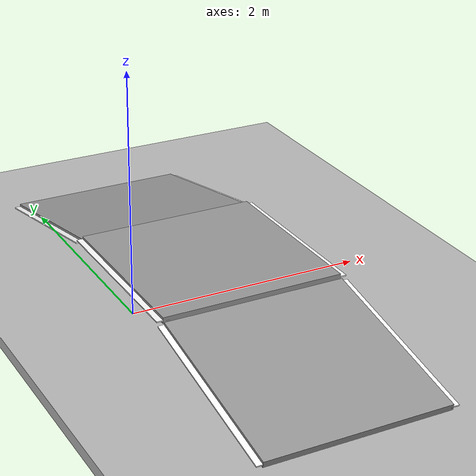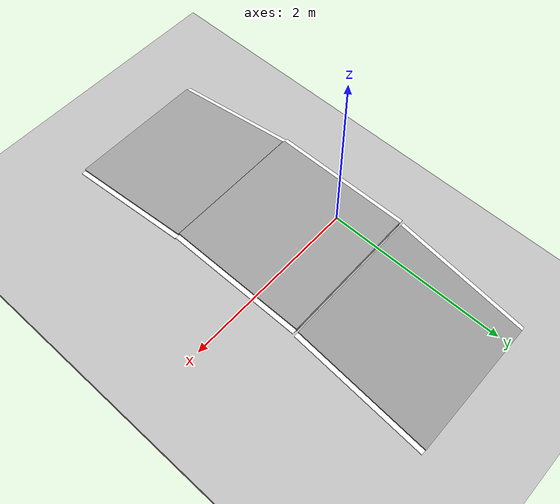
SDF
<?xml version="1.0" ?>
<sdf version="1.6">
  <world name="ramp">

    <physics type="ode">
      <max_step_size>0.001</max_step_size>
      <real_time_update_rate>1000</real_time_update_rate>
    </physics>

    <light type="directional" name="sun">
      <cast_shadows>true</cast_shadows>
      <pose>0 0 10 0 0 0</pose>
      <diffuse>1 1 1 1</diffuse>
      <specular>0.2 0.2 0.2 1</specular>
      <direction>-0.5 0.1 -0.9</direction>
    </light>

    <include>
      <uri>model://floor</uri>
      <pose>0 0 0 0 0 0</pose>
    </include>

    <gui fullscreen='0'>
      <camera name='user_camera'>
        <pose>-1.8 14.4 8.6 0.0 0.545 -1.65</pose>
        <view_controller>orbit</view_controller>
      </camera>
    </gui>

    <!--######################ramps##############################-->
    <include>
      <uri>model://ramp</uri>
      <name>ramp_1</name>
      <pose>0.61 -0.1 0.1 0 0 1.575</pose>
    </include>

  </world>
</sdf>

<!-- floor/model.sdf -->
<sdf version="1.6">
  <model name="custom_course">
    <static>true</static>
    <link name="link">
      <collision name="collision">
        <geometry>
          <box>
            <size>20 20 0.1</size> <!-- 20m x 20m wide, 10cm thick -->
          </box>
        </geometry>
      </collision>
      <visual name="visual">
        <geometry>
          <box>
            <size>20 20 0.1</size>
          </box>
        </geometry>
        <material>
          <script>
            <uri>model://floor/materials/scripts</uri>
            <uri>model://floor/materials/textures</uri>
            <name>CustomCourse/Diffuse</name>
          </script>
        </material>
      </visual>
    </link>
  </model>
</sdf>

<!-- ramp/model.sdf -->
<sdf version="1.8">
  <model name="ramp">
    <static>true</static>

    <!-- Up slope -->
    <link name="up_slope">
      <pose>-1.5 0 0.125 0 -0.1963 0</pose>
      <collision name="collision">
        <geometry><box><size>1.5 1.5 0.05</size></box></geometry>
        <surface>
          <friction><ode><mu>1.0</mu><mu2>1.0</mu2></ode></friction>
        </surface>
      </collision>
      <visual name="visual">
        <geometry><box><size>1.5 1.5 0.05</size></box></geometry>
        <material>
          <ambient>0.5 0.5 0.5 1</ambient>
          <diffuse>0.6 0.6 0.6 1</diffuse>
        </material>
      </visual>
    </link>

    <!-- Up slope lane lines -->
    <link name="up_slope_lane_left">
      <pose>-1.5 0.75 0.125 0 -0.1963 0</pose>
      <visual name="visual">
        <geometry><box><size>1.5 0.1 0.01</size></box></geometry>
        <material>
          <ambient>1 1 1 1</ambient>
          <diffuse>1 1 1 1</diffuse>
          <emissive>1 1 1 1</emissive>
        </material>
      </visual>
    </link>
    <link name="up_slope_lane_right">
      <pose>-1.5 -0.75 0.125 0 -0.1963 0</pose>
      <visual name="visual">
        <geometry><box><size>1.5 0.1 0.01</size></box></geometry>
        <material>
          <ambient>1 1 1 1</ambient>
          <diffuse>1 1 1 1</diffuse>
          <emissive>1 1 1 1</emissive>
        </material>
      </visual>
    </link>

    <!-- Flat top -->
    <link name="flat_top">
      <pose>0 0 0.3 0 0 0</pose>
      <collision name="collision">
        <geometry><box><size>1.5 1.5 0.05</size></box></geometry>
        <surface>
          <friction><ode><mu>1.0</mu><mu2>1.0</mu2></ode></friction>
        </surface>
      </collision>
      <visual name="visual">
        <geometry><box><size>1.5 1.5 0.05</size></box></geometry>
        <material>
          <ambient>0.5 0.5 0.5 1</ambient>
          <diffuse>0.6 0.6 0.6 1</diffuse>
        </material>
      </visual>
    </link>

    <!-- Flat top lane lines -->
    <link name="flat_top_lane_left">
      <pose>0 0.75 0.3 0 0 0</pose>
      <visual name="visual">
        <geometry><box><size>1.5 0.1 0.01</size></box></geometry>
        <material>
          <ambient>1 1 1 1</ambient>
          <diffuse>1 1 1 1</diffuse>
          <emissive>1 1 1 1</emissive>
        </material>
      </visual>
    </link>
    <link name="flat_top_lane_right">
      <pose>0 -0.75 0.3 0 0 0</pose>
      <visual name="visual">
        <geometry><box><size>1.5 0.1 0.01</size></box></geometry>
        <material>
          <ambient>1 1 1 1</ambient>
          <diffuse>1 1 1 1</diffuse>
          <emissive>1 1 1 1</emissive>
        </material>
      </visual>
    </link>

    <!-- Down slope -->
    <link name="down_slope">
      <pose>1.5 0 0.125 0 0.1963 0</pose>
      <collision name="collision">
        <geometry><box><size>1.5 1.5 0.05</size></box></geometry>
        <surface>
          <friction><ode><mu>1.0</mu><mu2>1.0</mu2></ode></friction>
        </surface>
      </collision>
      <visual name="visual">
        <geometry><box><size>1.5 1.5 0.05</size></box></geometry>
        <material>
          <ambient>0.5 0.5 0.5 1</ambient>
          <diffuse>0.6 0.6 0.6 1</diffuse>
        </material>
      </visual>
    </link>

    <!-- Down slope lane lines -->
    <link name="down_slope_lane_left">
      <pose>1.5 0.75 0.125 0 0.1963 0</pose>
      <visual name="visual">
        <geometry><box><size>1.5 0.1 0.01</size></box></geometry>
        <material>
          <ambient>1 1 1 1</ambient>
          <diffuse>1 1 1 1</diffuse>
          <emissive>1 1 1 1</emissive>
        </material>
      </visual>
    </link>
    <link name="down_slope_lane_right">
      <pose>1.5 -0.75 0.125 0 0.1963 0</pose>
      <visual name="visual">
        <geometry><box><size>1.5 0.1 0.01</size></box></geometry>
        <material>
          <ambient>1 1 1 1</ambient>
          <diffuse>1 1 1 1</diffuse>
          <emissive>1 1 1 1</emissive>
        </material>
      </visual>
    </link>

  </model>
</sdf>
